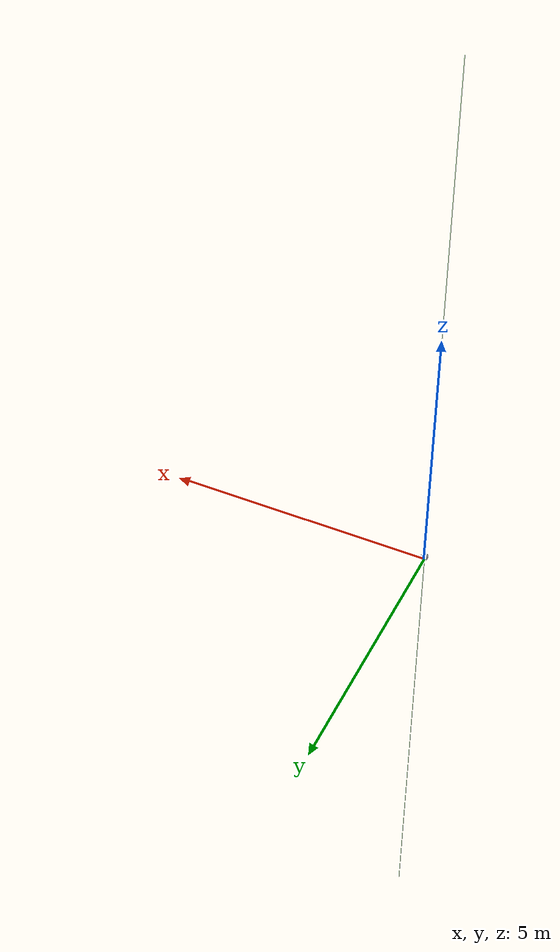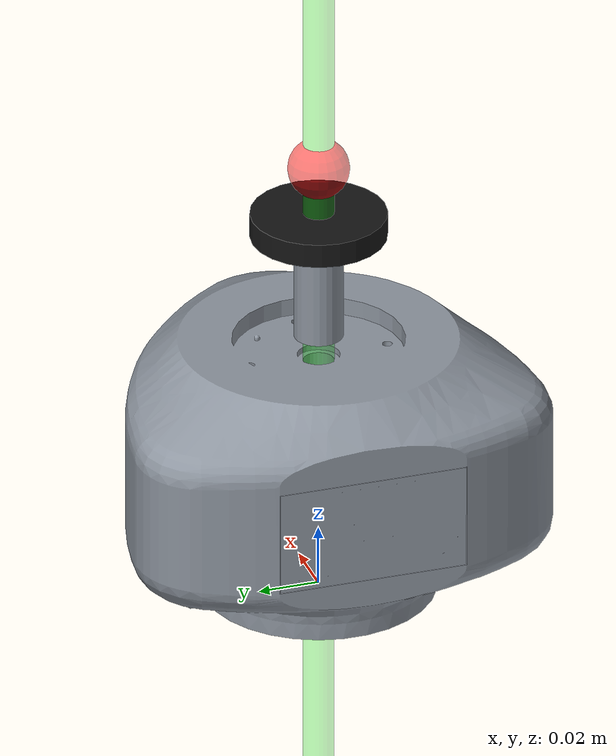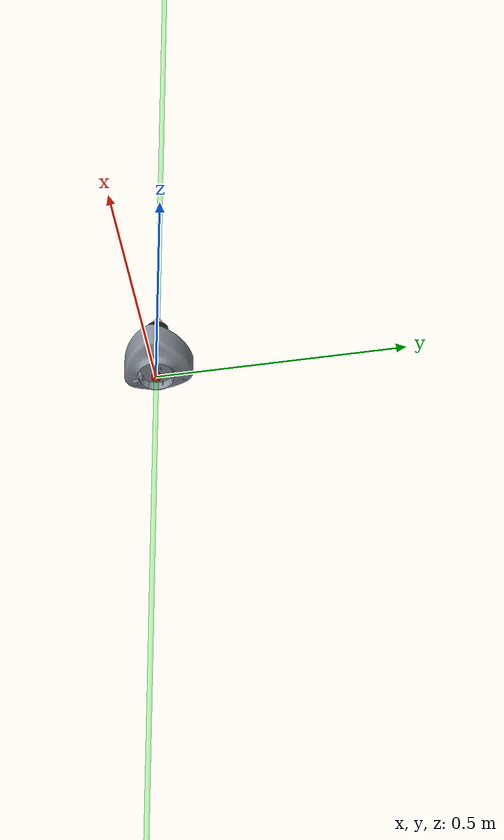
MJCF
<mujoco model="ecbpi_gripper_model">
  <compiler angle="radian" autolimits="true"/>

  <asset>
    <mesh name="ecbpi_pump" file="meshes/ecbpi/ecbpi_pump.obj"/>
    <material name="ecbpi_housing" rgba="0.55 0.58 0.62 1"/>
    <material name="ecbpi_cup" rgba="0.08 0.08 0.08 1"/>
  </asset>

  <worldbody>
    <body name="base_mount" pos="0 0 0">
      <site name="ft_frame" pos="0 0 0" size="0.01 0.01 0.01" rgba="1 0 0 1" type="sphere" group="1"/>
      <inertial mass="0.4" pos="0 0 0.05" diaginertia="4e-4 4e-4 2e-4"/>

      <!-- Housing (visual + collision) -->
      <geom type="mesh" mesh="ecbpi_pump" pos="0 0 0.023" quat="0.7071068 -0.7071068 0 0" material="ecbpi_housing" contype="0" conaffinity="0" group="1"/>
      <geom type="mesh" mesh="ecbpi_pump" pos="0 0 0.023" quat="0.7071068 -0.7071068 0 0"/>

      <body name="eef" pos="0 0 0.15" quat="0.707105 0 0 -0.707105">
        <site name="grip_site" pos="0 0 0" size="0.01 0.01 0.01" rgba="1 0 0 0.5" type="sphere"/>
        <site name="ee_x" pos="0.1 0 0" size="0.005 .1" quat="0.707105 0 0.707108 0" rgba="1 0 0 0" type="cylinder"/>
        <site name="ee_y" pos="0 0.1 0" size="0.005 .1" quat="0.707105 0.707108 0 0" rgba="0 1 0 0" type="cylinder"/>
        <site name="ee_z" pos="0 0 0.1" size="0.005 .1" quat="1 0 0 0" rgba="0 0 1 0" type="cylinder"/>
        <!-- This site was added for visualization. -->
        <site name="grip_site_cylinder" pos="0 0 0" size="0.005 10" rgba="0 1 0 0.3" type="cylinder"/>
      </body>

      <!-- Stem + suction cup, hanging off the housing along the tool axis -->
      <body name="cup_mount" pos="0 0 0.09">
        <geom type="cylinder" size="0.008 0.02" pos="0 0 0.02" material="ecbpi_housing" contype="0" conaffinity="0" group="1"/>
        <geom type="cylinder" size="0.008 0.02" pos="0 0 0.02"/>

        <body name="suction_cup" pos="0 0 0.04">
          <inertial mass="0.02" pos="0 0 0" diaginertia="1e-6 1e-6 1e-6"/>
          <joint name="cup_bellows_joint" type="slide" axis="0 0 1" range="-0.01 0" damping="5" stiffness="200" springref="0"/>
          <geom name="suction_cup_geom" type="cylinder" size="0.022 0.004" pos="0 0 0" material="ecbpi_cup" contype="0" conaffinity="0" group="1"/>
          <geom type="cylinder" size="0.022 0.004" pos="0 0 0"/>
        </body>
      </body>
    </body>
  </worldbody>

  <actuator>
    <position name="cup_actuator" joint="cup_bellows_joint" ctrlrange="-0.01 0" kp="80"/>
  </actuator>

  <sensor>
    <force name="force_ee" site="ft_frame"/>
    <torque name="torque_ee" site="ft_frame"/>
  </sensor>
</mujoco>
